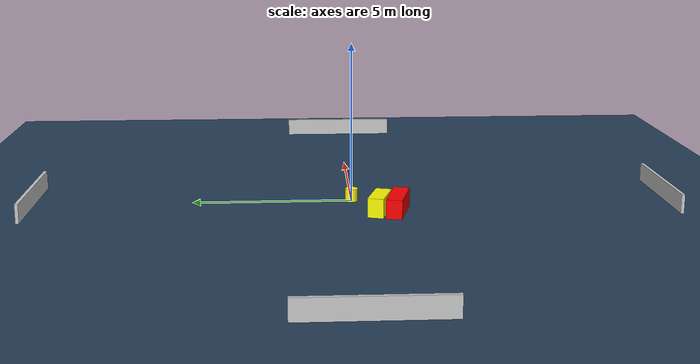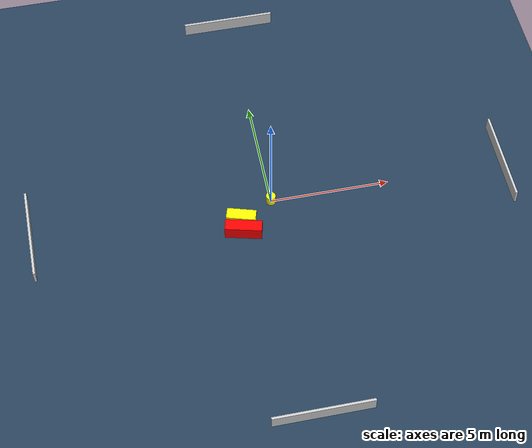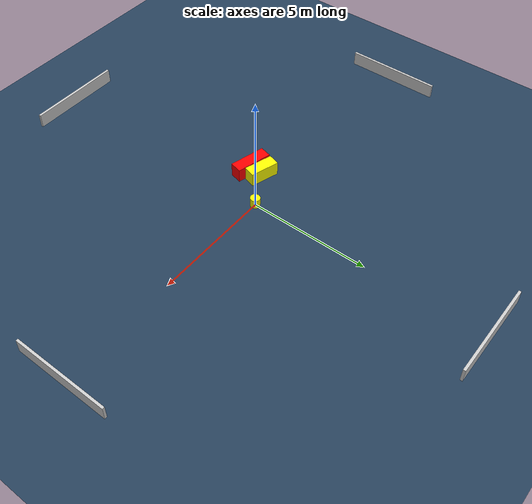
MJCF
<?xml version="1.0" ?>
<mujoco model="generated_environment">
  <option timestep="0.01" integrator="RK4" cone="elliptic"/>
  <default>
    <geom density="1"/>
  </default>
  <asset>
    <texture builtin="gradient" height="3072" name="skybox" rgb1="0.3 0.5 0.7" rgb2="0 0 0" type="skybox" width="512"/>
    <texture builtin="checker" height="300" name="groundplane" rgb1="0.2 0.3 0.4" rgb2="0.1 0.2 0.3" type="2d" width="300"/>
    <material name="groundplane" reflectance="0.2" texrepeat="5 5" texture="groundplane"/>
  </asset>
  <worldbody>
    <light dir="0 0 -1" directional="true" pos="0 0 1.5"/>
    <geom condim="3" friction="0.5 0.005 0.001" material="groundplane" name="floor" pos="0 0 0" size="0 0 0.05" type="plane"/>
    <body name="walls">
      <geom name="wall_1" condim="4" pos="-10.0 0.0 0.3" rgba="0.800000011920929 0.800000011920929 0.800000011920929 1.0" size="0.05 2.0 0.3" type="box"/>
      <geom name="wall_2" condim="4" pos="10.0 0.0 0.3" rgba="0.800000011920929 0.800000011920929 0.800000011920929 1.0" size="0.05 2.0 0.3" type="box"/>
      <geom name="wall_3" condim="4" pos="0.0 -10.0 0.3" rgba="0.800000011920929 0.800000011920929 0.800000011920929 1.0" size="2.0 0.05 0.3" type="box"/>
      <geom name="wall_4" condim="4" pos="0.0 10.0 0.3" rgba="0.800000011920929 0.800000011920929 0.800000011920929 1.0" size="2.0 0.05 0.3" type="box"/>
    </body>
    <body name="robot">
      <joint name="joint_x" type="slide" pos="0 0 0" axis="1 0 0"/>
      <joint name="joint_y" type="slide" pos="0 0 0" axis="0 1 0"/>
      <geom name="robot" type="cylinder" pos="0.0 0.0 0.2" size="0.2 0.2 0.0" mass="5.0" friction="1.0 0.005 0.0001" condim="4" rgba="1.0 1.0 0.0 1.0"/>
    </body>
    <body name="obstacle_1_movable">
      <geom name="obstacle_1_movable" condim="4" pos="-1.3991468402286193 -0.7861950685758795 0.3" euler="0 0 253.22043587101018" friction="0.0 0.005 0.001" rgba="1.0 1.0 0.0 1.0" size="0.2445891760920441 0.6070489679952332 0.3" type="box" mass="0.1"/>
      <joint type="free"/>
    </body>
    <body name="obstacle_2_static">
      <geom name="obstacle_2_static" condim="4" pos="-1.407854737024523 -1.3421672317195497 0.3" euler="0 0 165.84395979611233" friction="0.0 0.005 0.001" rgba="1.0 0.0 0.0 1.0" size="0.7576375300920128 0.24802658228278124 0.3" type="box"/>
    </body>
  </worldbody>
  <actuator>
    <motor name="actuator_x" joint="joint_x" gear="1" ctrlrange="-1 1"/>
    <motor name="actuator_y" joint="joint_y" gear="1" ctrlrange="-1 1"/>
  </actuator>
</mujoco>
